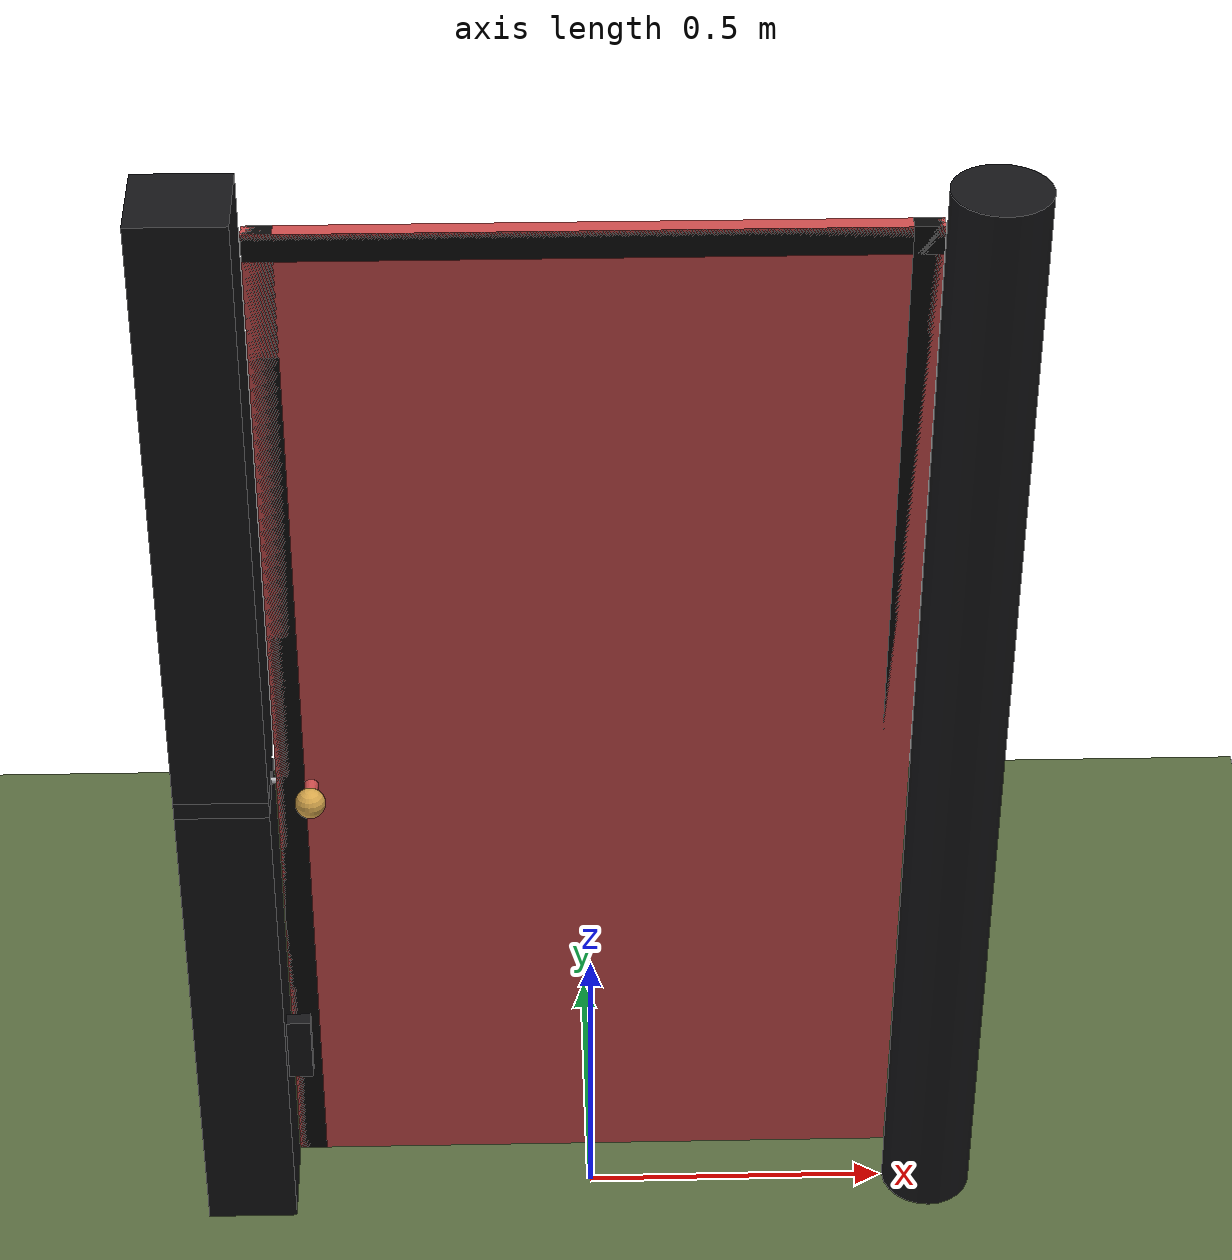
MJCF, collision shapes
<?xml version="1.0" ?>
<mujoco model="db0126_gate_swing_minimal">
  <compiler angle="radian" meshdir="../../hardware" texturedir="../../textures" autolimits="true" inertiafromgeom="false"/>
  <option timestep="0.002" integrator="implicitfast" cone="elliptic" impratio="10" noslip_iterations="3">
    <flag multiccd="enable"/>
  </option>
  <size memory="16M"/>
  <default>
    <geom condim="4" solref="0.005 1" solimp="0.95 0.99 0.001"/>
    <joint solreflimit="0.005 1" solimplimit="0.95 0.99 0.001"/>
    <tendon solreflimit="0.005 1"/>
    <equality solref="0.002 1"/>
  </default>
  <visual>
    <headlight ambient="0.4 0.4 0.4" diffuse="0.7 0.7 0.7" specular="0.2 0.2 0.2"/>
    <quality shadowsize="4096"/>
    <map znear="0.01" zfar="60"/>
  </visual>
  <asset>
    <mesh name="knob_d1888f6f03" file="knob_d1888f6f03.obj"/>
    <material name="mat_floor" rgba="0.35 0.42 0.25 1" specular="0.2" shininess="0.15" reflectance="0"/>
    <material name="mat_wall" rgba="0.78 0.76 0.7 1" specular="0.2" shininess="0.1" reflectance="0"/>
    <material name="mat_leaf" rgba="0.04 0.04 0.04 1" specular="0.23" shininess="0.6" reflectance="0.02"/>
    <material name="mat_hinge" rgba="0.65 0.66 0.68 1" specular="0.74" shininess="0.5" reflectance="0.36"/>
    <material name="mat_op_brass" rgba="0.85 0.66 0.3 1" specular="0.8" shininess="0.75" reflectance="0.4"/>
    <material name="mat_trim" rgba="0.85 0.66 0.3 1" specular="0.8" shininess="0.75" reflectance="0.4"/>
    <material name="mat_bolt" rgba="0.75 0.76 0.77 1" specular="0.8" shininess="0.65" reflectance="0.4"/>
    <material name="mat_frame" rgba="0.08 0.08 0.09 1" specular="0.56" shininess="0.25" reflectance="0.24"/>
    <texture name="skybox" type="skybox" builtin="gradient" rgb1="0.6 0.7 0.85" rgb2="0.9 0.92 0.95" width="256" height="256"/>
  </asset>
  <worldbody>
    <light name="sun" pos="1.5 -2.5 4" dir="-0.3 0.5 -0.8" directional="true" diffuse="0.8 0.8 0.8" specular="0.3 0.3 0.3" castshadow="true"/>
    <light name="fill" pos="-1.5 2.5 3" dir="0.3 -0.5 -0.7" directional="true" diffuse="0.35 0.35 0.4" castshadow="false"/>
    <camera name="robot_view" pos="0 -2.33125 1.56275" xyaxes="1 0 0 0 0.26963 0.962964" fovy="52"/>
    <camera name="far_view" pos="0 2.33125 1.56275" xyaxes="-1 0 0 0 -0.26963 0.962964" fovy="52"/>
    <camera name="iso" pos="-1.77175 -1.95825 1.93575" xyaxes="0.741536 -0.670913 0 0.242917 0.268487 0.932151" fovy="46"/>
    <camera name="detail_handle" pos="-0.262 -0.859 1.18" xyaxes="0.97561 0.219512 0 -0.070934 0.315262 0.94635" fovy="38"/>
    <geom name="floor" type="box" size="6 6 0.05" pos="0 0 -0.05" material="mat_floor" group="0" contype="1" conaffinity="1" friction="0.8 0.005 0.0001" density="2400"/>
    <geom name="post_hinge" type="cylinder" size="0.075 0.975" pos="0.581 0 0.975" material="mat_frame" group="0" contype="1" conaffinity="1" friction="0.6 0.005 0.0001" density="800"/>
    <geom name="post_900_wall_n" type="box" size="0.075 0.03425 0.015" pos="-0.581 -0.04075 0.9" material="mat_frame" group="0" contype="1" conaffinity="1" friction="0.6 0.005 0.0001" density="800"/>
    <geom name="post_900_wall_p" type="box" size="0.075 0.008 0.015" pos="-0.581 0.0145 0.9" material="mat_frame" group="0" contype="1" conaffinity="1" friction="0.6 0.005 0.0001" density="800"/>
    <geom name="post_900_ramp" type="box" size="0.075 0.037018 0.015" pos="-0.586945 0.043555 0.9" quat="0.994802 0 0 0.101832" material="mat_frame" group="0" contype="1" conaffinity="1" friction="0.12 0.005 0.0001" density="800"/>
    <geom name="post_900_back" type="box" size="0.066 0.0065 0.015" pos="-0.59 0 0.9" material="mat_frame" group="0" contype="1" conaffinity="1" friction="0.6 0.005 0.0001" density="800"/>
    <geom name="post_latch_0" type="box" size="0.075 0.075 0.4425" pos="-0.581 0 0.4425" material="mat_frame" group="0" contype="1" conaffinity="1" friction="0.6 0.005 0.0001" density="800"/>
    <geom name="post_latch_1" type="box" size="0.075 0.075 0.5175" pos="-0.581 0 1.4325" material="mat_frame" group="0" contype="1" conaffinity="1" friction="0.6 0.005 0.0001" density="800"/>
    <geom name="gate_stop" type="box" size="0.02 0.012 0.06" pos="-0.486 -0.0245 0.35" material="mat_frame" group="0" contype="1" conaffinity="1" friction="0.6 0.005 0.0001" density="800"/>
    <site name="approach_point" pos="0 -1.5 0" quat="1 0 0 0" size="0.05" rgba="0.2 0.9 0.2 0.5" group="4"/>
    <site name="goal_point" pos="0 1.5 0" quat="1 0 0 0" size="0.05" rgba="0.2 0.9 0.2 0.5" group="4"/>
    <site name="door_plane_center" pos="0 0 0.91" quat="1 0 0 0" size="0.02" rgba="0.2 0.9 0.2 0.5" group="4"/>
    <body name="leaf" pos="0.506 0 0">
      <inertial pos="-0.503 0 1" mass="55.017768" quat="-0.5 0.5 0.5 0.5" diaginertia="4.588317518 14.85888689 19.44147339"/>
      <joint name="leaf_hinge" type="hinge" axis="0 0 -1" pos="-0.003 0.05 0" limited="true" range="0 1.570796" damping="0.37508" frictionloss="27.049296" armature="0.02"/>
      <geom name="leaf_slab_col" type="box" size="0.5 0.0125 0.9" pos="-0.503 0 1" material="mat_leaf" group="3" contype="1" conaffinity="1" rgba="0.8 0.3 0.3 0.25" friction="0.45 0.005 0.0001" density="1"/>
      <geom name="leaf_rail_b" type="box" size="0.5 0.0125 0.0225" pos="-0.503 0 0.1225" material="mat_leaf" group="1" contype="0" conaffinity="0" density="1"/>
      <geom name="leaf_rail_t" type="box" size="0.5 0.0125 0.0225" pos="-0.503 0 1.8775" material="mat_leaf" group="1" contype="0" conaffinity="0" density="1"/>
      <geom name="leaf_stile_h" type="box" size="0.0225 0.0125 0.9" pos="-0.0255 0 1" material="mat_leaf" group="1" contype="0" conaffinity="0" density="1"/>
      <geom name="leaf_stile_l" type="box" size="0.0225 0.0125 0.9" pos="-0.9805 0 1" material="mat_leaf" group="1" contype="0" conaffinity="0" density="1"/>
      <site name="leaf_edge_mid" pos="-1.003 0 0.9" quat="1 0 0 0" size="0.02" rgba="0.2 0.9 0.2 0.5" group="4"/>
      <body name="leaf_handle" pos="-0.948 0 0.9">
        <inertial pos="0 0 0" mass="1.098683" quat="0.707107 0 0 -0.707107" diaginertia="0.000311555 0.003134844 0.003134844"/>
        <joint name="leaf_handle_hinge" type="hinge" axis="0 1 0" limited="true" range="0 0.87" damping="0.143612" frictionloss="0.038" stiffness="0.5" springref="-0.5" armature="0.01"/>
        <geom name="leaf_handle_knob_n" type="mesh" mesh="knob_d1888f6f03" pos="0 -0.0125 0" quat="0 0 -0.707107 0.707107" material="mat_op_brass" group="1" contype="0" conaffinity="0" density="3000"/>
        <geom name="leaf_handle_knob_col_n" type="sphere" size="0.0243" pos="0 -0.059 0" material="mat_op_brass" group="0" contype="1" conaffinity="1" friction="0.9 0.01 0.0001" density="3000"/>
        <geom name="leaf_handle_knob_neck_n" type="cylinder" size="0.011 0.012" pos="0 -0.0245 0" quat="0.707107 -0.707107 0 0" material="mat_op_brass" group="3" contype="1" conaffinity="1" rgba="0.8 0.3 0.3 0.25" friction="0.6 0.005 0.0001" density="3000"/>
        <geom name="leaf_handle_knob_p" type="mesh" mesh="knob_d1888f6f03" pos="0 0.0125 0" quat="0 0 0.707107 0.707107" material="mat_op_brass" group="1" contype="0" conaffinity="0" density="3000"/>
        <geom name="leaf_handle_knob_col_p" type="sphere" size="0.0243" pos="0 0.059 0" material="mat_op_brass" group="0" contype="1" conaffinity="1" friction="0.9 0.01 0.0001" density="3000"/>
        <geom name="leaf_handle_knob_neck_p" type="cylinder" size="0.011 0.012" pos="0 0.0245 0" quat="0.707107 -0.707107 0 0" material="mat_op_brass" group="3" contype="1" conaffinity="1" rgba="0.8 0.3 0.3 0.25" friction="0.6 0.005 0.0001" density="3000"/>
        <site name="leaf_handle_grip_n" pos="0 -0.059 0" quat="1 0 0 0" size="0.012" rgba="0.2 0.9 0.2 0.5" group="4"/>
        <site name="leaf_handle_grip_p" pos="0 0.059 0" quat="1 0 0 0" size="0.012" rgba="0.2 0.9 0.2 0.5" group="4"/>
      </body>
      <body name="leaf_latch_bolt" pos="-1.003 0 0.9">
        <inertial pos="0.008 0 0" mass="0.027149" quat="0 0 -0.707107 0.707107" diaginertia="0.000000328 0.000003943 0.000003943"/>
        <joint name="leaf_latch_bolt_slide" type="slide" axis="1 0 0" limited="true" range="0 0.014" damping="2" frictionloss="0.3" stiffness="400" springref="-0.01" armature="0.1"/>
        <geom name="leaf_latch_bolt_capsule" type="capsule" size="0.005 0.017" pos="0.008 0 0" quat="0.707107 0 -0.707107 0" material="mat_bolt" group="0" contype="1" conaffinity="1" friction="0.2 0.005 0.0001" density="8500"/>
      </body>
    </body>
  </worldbody>
  <tendon>
    <fixed name="leaf_latch_bolt_coupling" limited="true" range="0 10">
      <joint joint="leaf_latch_bolt_slide" coef="1"/>
      <joint joint="leaf_handle_hinge" coef="-0.017284"/>
    </fixed>
  </tendon>
  <sensor>
    <jointpos name="leaf_hinge_pos" joint="leaf_hinge"/>
    <jointvel name="leaf_hinge_vel" joint="leaf_hinge"/>
    <jointpos name="leaf_handle_hinge_pos" joint="leaf_handle_hinge"/>
    <jointvel name="leaf_handle_hinge_vel" joint="leaf_handle_hinge"/>
    <jointpos name="leaf_latch_bolt_slide_pos" joint="leaf_latch_bolt_slide"/>
    <jointvel name="leaf_latch_bolt_slide_vel" joint="leaf_latch_bolt_slide"/>
  </sensor>
</mujoco>
